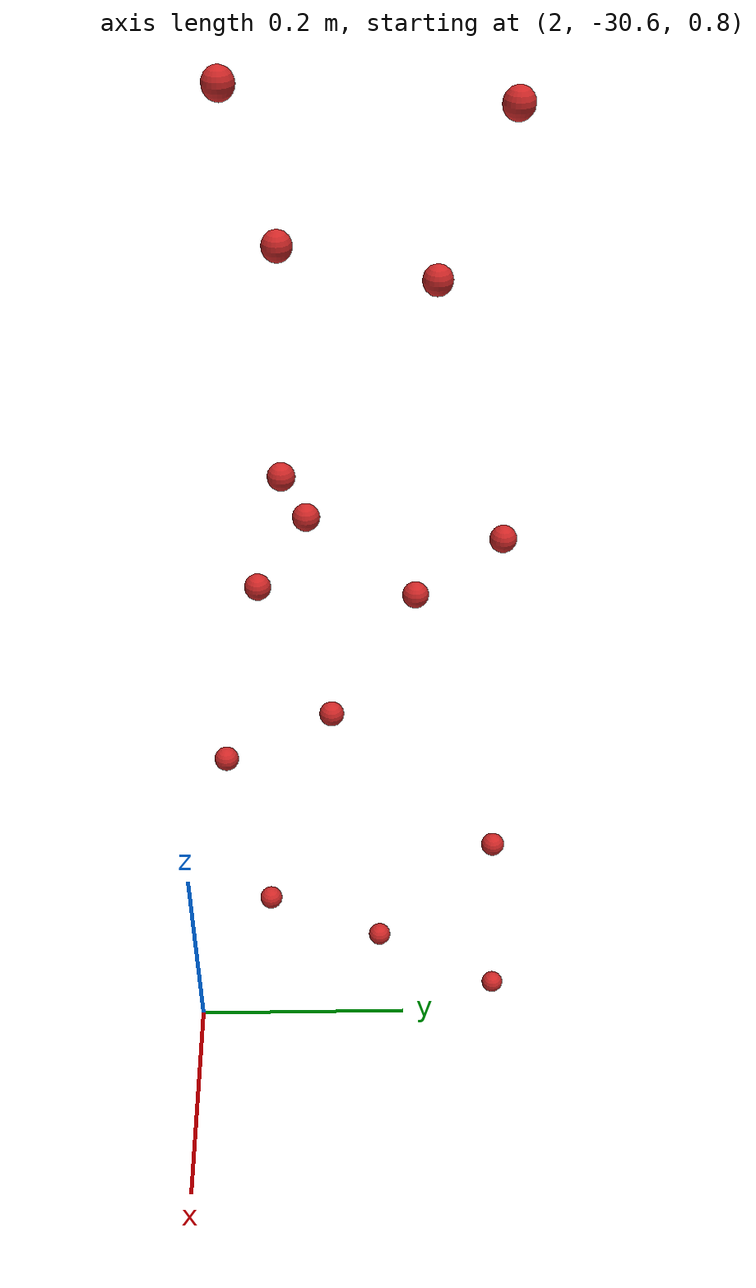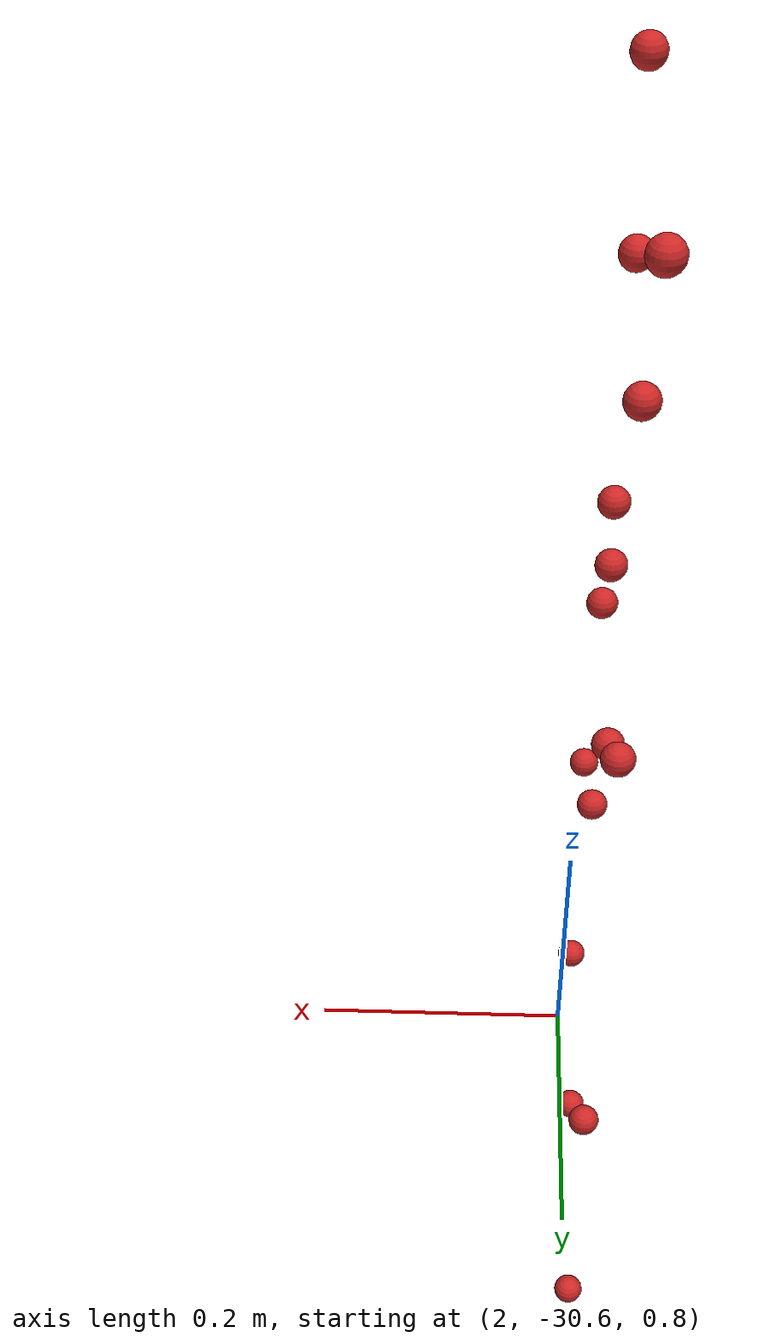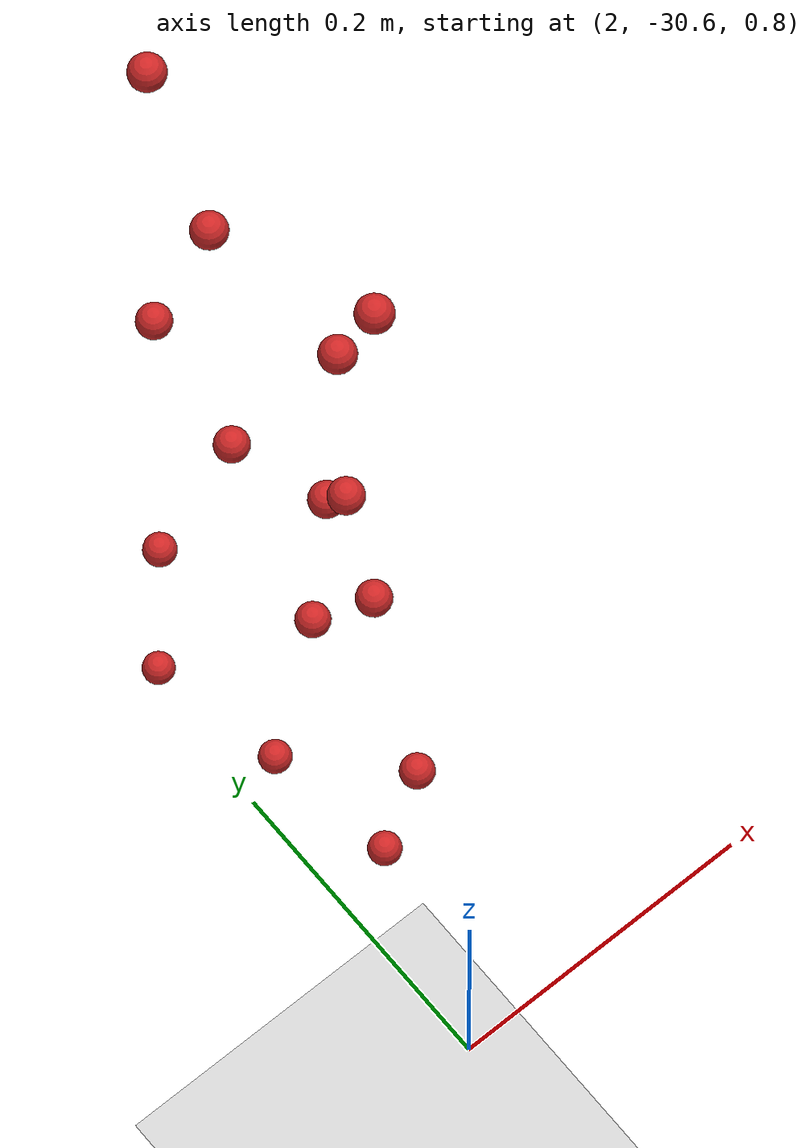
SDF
<sdf version="1.4">
 <world name="default">
  <model name="ground_plane">
   <static>1</static>
   <link name="link">
    <collision name="collision">
     <geometry><plane><normal>0 0 1</normal><size>100 100</size></plane></geometry>
     <surface><friction><ode><mu>100</mu><mu2>50</mu2></ode></friction></surface>
    </collision>
    <visual name="visual">
     <cast_shadows>0</cast_shadows>
     <geometry><plane><normal>0 0 1</normal><size>100 100</size></plane></geometry>
     <material>
      <script><uri>file://media/materials/scripts/gazebo.material</uri><name>Gazebo/Grey</name></script>
     </material>
    </visual>
    <velocity_decay><linear>0</linear><angular>0</angular></velocity_decay>
   </link>
  </model>
  <model name="apple430">
   <link name="my_apple">
    <inertial>
     <pose>2 0 0 0 -0 0</pose>
     <mass>1</mass>
     <inertia><ixx>1</ixx><ixy>0</ixy><ixz>0</ixz><iyy>1</iyy><iyz>0</iyz><izz>1</izz></inertia>
    </inertial>
    <collision name="my_apple_collision">
     <pose>2 0 1 0 -0 0</pose>
     <geometry><sphere><radius>0.01</radius></sphere></geometry>
    </collision>
    <visual name="my_apple_visual">
     <pose>2 0 1 0 -0 0</pose>
     <geometry><sphere><radius>0.01</radius></sphere></geometry>
     <material><script><name>Gazebo/Red</name><uri>__default__</uri></script></material>
    </visual>
    <gravity>0</gravity>
    <velocity_decay><linear>0</linear><angular>0</angular></velocity_decay>
   </link>
   <pose>0 -30.5254 -0.022488 0 -0 0</pose>
   <static>0</static>
  </model>
  <model name="apple431">
   <link name="my_apple">
    <inertial>
     <pose>2 0 0 0 -0 0</pose>
     <mass>1</mass>
     <inertia><ixx>1</ixx><ixy>0</ixy><ixz>0</ixz><iyy>1</iyy><iyz>0</iyz><izz>1</izz></inertia>
    </inertial>
    <collision name="my_apple_collision">
     <pose>2 0 1 0 -0 0</pose>
     <geometry><sphere><radius>0.01</radius></sphere></geometry>
    </collision>
    <visual name="my_apple_visual">
     <pose>2 0 1 0 -0 0</pose>
     <geometry><sphere><radius>0.01</radius></sphere></geometry>
     <material><script><name>Gazebo/Red</name><uri>__default__</uri></script></material>
    </visual>
    <gravity>0</gravity>
    <velocity_decay><linear>0</linear><angular>0</angular></velocity_decay>
   </link>
   <pose>0 -30.5011 0.429047 0 -0 0</pose>
   <static>0</static>
  </model>
  <model name="apple432">
   <link name="my_apple">
    <inertial>
     <pose>2 0 0 0 -0 0</pose>
     <mass>1</mass>
     <inertia><ixx>1</ixx><ixy>0</ixy><ixz>0</ixz><iyy>1</iyy><iyz>0</iyz><izz>1</izz></inertia>
    </inertial>
    <collision name="my_apple_collision">
     <pose>2 0 1 0 -0 0</pose>
     <geometry><sphere><radius>0.01</radius></sphere></geometry>
    </collision>
    <visual name="my_apple_visual">
     <pose>2 0 1 0 -0 0</pose>
     <geometry><sphere><radius>0.01</radius></sphere></geometry>
     <material><script><name>Gazebo/Red</name><uri>__default__</uri></script></material>
    </visual>
    <gravity>0</gravity>
    <velocity_decay><linear>0</linear><angular>0</angular></velocity_decay>
   </link>
   <pose>0 -30.4844 0.394965 0 -0 0</pose>
   <static>0</static>
  </model>
  <model name="apple433">
   <link name="my_apple">
    <inertial>
     <pose>2 0 0 0 -0 0</pose>
     <mass>1</mass>
     <inertia><ixx>1</ixx><ixy>0</ixy><ixz>0</ixz><iyy>1</iyy><iyz>0</iyz><izz>1</izz></inertia>
    </inertial>
    <collision name="my_apple_collision">
     <pose>2 0 1 0 -0 0</pose>
     <geometry><sphere><radius>0.01</radius></sphere></geometry>
    </collision>
    <visual name="my_apple_visual">
     <pose>2 0 1 0 -0 0</pose>
     <geometry><sphere><radius>0.01</radius></sphere></geometry>
     <material><script><name>Gazebo/Red</name><uri>__default__</uri></script></material>
    </visual>
    <gravity>0</gravity>
    <velocity_decay><linear>0</linear><angular>0</angular></velocity_decay>
   </link>
   <pose>0 -30.5218 0.333142 0 -0 0</pose>
   <static>0</static>
  </model>
  <model name="apple434">
   <link name="my_apple">
    <inertial>
     <pose>2 0 0 0 -0 0</pose>
     <mass>1</mass>
     <inertia><ixx>1</ixx><ixy>0</ixy><ixz>0</ixz><iyy>1</iyy><iyz>0</iyz><izz>1</izz></inertia>
    </inertial>
    <collision name="my_apple_collision">
     <pose>2 0 1 0 -0 0</pose>
     <geometry><sphere><radius>0.01</radius></sphere></geometry>
    </collision>
    <visual name="my_apple_visual">
     <pose>2 0 1 0 -0 0</pose>
     <geometry><sphere><radius>0.01</radius></sphere></geometry>
     <material><script><name>Gazebo/Red</name><uri>__default__</uri></script></material>
    </visual>
    <gravity>0</gravity>
    <velocity_decay><linear>0</linear><angular>0</angular></velocity_decay>
   </link>
   <pose>0 -30.4678 0.204739 0 -0 0</pose>
   <static>0</static>
  </model>
  <model name="apple435">
   <link name="my_apple">
    <inertial>
     <pose>2 0 0 0 -0 0</pose>
     <mass>1</mass>
     <inertia><ixx>1</ixx><ixy>0</ixy><ixz>0</ixz><iyy>1</iyy><iyz>0</iyz><izz>1</izz></inertia>
    </inertial>
    <collision name="my_apple_collision">
     <pose>2 0 1 0 -0 0</pose>
     <geometry><sphere><radius>0.01</radius></sphere></geometry>
    </collision>
    <visual name="my_apple_visual">
     <pose>2 0 1 0 -0 0</pose>
     <geometry><sphere><radius>0.01</radius></sphere></geometry>
     <material><script><name>Gazebo/Red</name><uri>__default__</uri></script></material>
    </visual>
    <gravity>0</gravity>
    <velocity_decay><linear>0</linear><angular>0</angular></velocity_decay>
   </link>
   <pose>0 -30.3973 0.572748 0 -0 0</pose>
   <static>0</static>
  </model>
  <model name="apple436">
   <link name="my_apple">
    <inertial>
     <pose>2 0 0 0 -0 0</pose>
     <mass>1</mass>
     <inertia><ixx>1</ixx><ixy>0</ixy><ixz>0</ixz><iyy>1</iyy><iyz>0</iyz><izz>1</izz></inertia>
    </inertial>
    <collision name="my_apple_collision">
     <pose>2 0 1 0 -0 0</pose>
     <geometry><sphere><radius>0.01</radius></sphere></geometry>
    </collision>
    <visual name="my_apple_visual">
     <pose>2 0 1 0 -0 0</pose>
     <geometry><sphere><radius>0.01</radius></sphere></geometry>
     <material><script><name>Gazebo/Red</name><uri>__default__</uri></script></material>
    </visual>
    <gravity>0</gravity>
    <velocity_decay><linear>0</linear><angular>0</angular></velocity_decay>
   </link>
   <pose>0 -30.4253 -0.077421 0 -0 0</pose>
   <static>0</static>
  </model>
  <model name="apple437">
   <link name="my_apple">
    <inertial>
     <pose>2 0 0 0 -0 0</pose>
     <mass>1</mass>
     <inertia><ixx>1</ixx><ixy>0</ixy><ixz>0</ixz><iyy>1</iyy><iyz>0</iyz><izz>1</izz></inertia>
    </inertial>
    <collision name="my_apple_collision">
     <pose>2 0 1 0 -0 0</pose>
     <geometry><sphere><radius>0.01</radius></sphere></geometry>
    </collision>
    <visual name="my_apple_visual">
     <pose>2 0 1 0 -0 0</pose>
     <geometry><sphere><radius>0.01</radius></sphere></geometry>
     <material><script><name>Gazebo/Red</name><uri>__default__</uri></script></material>
    </visual>
    <gravity>0</gravity>
    <velocity_decay><linear>0</linear><angular>0</angular></velocity_decay>
   </link>
   <pose>0 -30.4038 0.324624 0 -0 0</pose>
   <static>0</static>
  </model>
  <model name="apple438">
   <link name="my_apple">
    <inertial>
     <pose>2 0 0 0 -0 0</pose>
     <mass>1</mass>
     <inertia><ixx>1</ixx><ixy>0</ixy><ixz>0</ixz><iyy>1</iyy><iyz>0</iyz><izz>1</izz></inertia>
    </inertial>
    <collision name="my_apple_collision">
     <pose>2 0 1 0 -0 0</pose>
     <geometry><sphere><radius>0.01</radius></sphere></geometry>
    </collision>
    <visual name="my_apple_visual">
     <pose>2 0 1 0 -0 0</pose>
     <geometry><sphere><radius>0.01</radius></sphere></geometry>
     <material><script><name>Gazebo/Red</name><uri>__default__</uri></script></material>
    </visual>
    <gravity>0</gravity>
    <velocity_decay><linear>0</linear><angular>0</angular></velocity_decay>
   </link>
   <pose>0 -30.3416 0.374781 0 -0 0</pose>
   <static>0</static>
  </model>
  <model name="apple440">
   <link name="my_apple">
    <inertial>
     <pose>2 0 0 0 -0 0</pose>
     <mass>1</mass>
     <inertia><ixx>1</ixx><ixy>0</ixy><ixz>0</ixz><iyy>1</iyy><iyz>0</iyz><izz>1</izz></inertia>
    </inertial>
    <collision name="my_apple_collision">
     <pose>2 0 1 0 -0 0</pose>
     <geometry><sphere><radius>0.01</radius></sphere></geometry>
    </collision>
    <visual name="my_apple_visual">
     <pose>2 0 1 0 -0 0</pose>
     <geometry><sphere><radius>0.01</radius></sphere></geometry>
     <material><script><name>Gazebo/Red</name><uri>__default__</uri></script></material>
    </visual>
    <gravity>0</gravity>
    <velocity_decay><linear>0</linear><angular>0</angular></velocity_decay>
   </link>
   <pose>0 -30.3268 0.046457 0 -0 0</pose>
   <static>0</static>
  </model>
  <model name="apple441">
   <link name="my_apple">
    <inertial>
     <pose>2 0 0 0 -0 0</pose>
     <mass>1</mass>
     <inertia><ixx>1</ixx><ixy>0</ixy><ixz>0</ixz><iyy>1</iyy><iyz>0</iyz><izz>1</izz></inertia>
    </inertial>
    <collision name="my_apple_collision">
     <pose>2 0 1 0 -0 0</pose>
     <geometry><sphere><radius>0.01</radius></sphere></geometry>
    </collision>
    <visual name="my_apple_visual">
     <pose>2 0 1 0 -0 0</pose>
     <geometry><sphere><radius>0.01</radius></sphere></geometry>
     <material><script><name>Gazebo/Red</name><uri>__default__</uri></script></material>
    </visual>
    <gravity>0</gravity>
    <velocity_decay><linear>0</linear><angular>0</angular></velocity_decay>
   </link>
   <pose>0 -30.3548 0.679958 0 -0 0</pose>
   <static>0</static>
  </model>
  <model name="apple448">
   <link name="my_apple">
    <inertial>
     <pose>2 0 0 0 -0 0</pose>
     <mass>1</mass>
     <inertia><ixx>1</ixx><ixy>0</ixy><ixz>0</ixz><iyy>1</iyy><iyz>0</iyz><izz>1</izz></inertia>
    </inertial>
    <collision name="my_apple_collision">
     <pose>2 0 1 0 -0 0</pose>
     <geometry><sphere><radius>0.01</radius></sphere></geometry>
    </collision>
    <visual name="my_apple_visual">
     <pose>2 0 1 0 -0 0</pose>
     <geometry><sphere><radius>0.01</radius></sphere></geometry>
     <material><script><name>Gazebo/Red</name><uri>__default__</uri></script></material>
    </visual>
    <gravity>0</gravity>
    <velocity_decay><linear>0</linear><angular>0</angular></velocity_decay>
   </link>
   <pose>0 -30.4982 0.595532 0 -0 0</pose>
   <static>0</static>
  </model>
  <model name="apple449">
   <link name="my_apple">
    <inertial>
     <pose>2 0 0 0 -0 0</pose>
     <mass>1</mass>
     <inertia><ixx>1</ixx><ixy>0</ixy><ixz>0</ixz><iyy>1</iyy><iyz>0</iyz><izz>1</izz></inertia>
    </inertial>
    <collision name="my_apple_collision">
     <pose>2 0 1 0 -0 0</pose>
     <geometry><sphere><radius>0.01</radius></sphere></geometry>
    </collision>
    <visual name="my_apple_visual">
     <pose>2 0 1 0 -0 0</pose>
     <geometry><sphere><radius>0.01</radius></sphere></geometry>
     <material><script><name>Gazebo/Red</name><uri>__default__</uri></script></material>
    </visual>
    <gravity>0</gravity>
    <velocity_decay><linear>0</linear><angular>0</angular></velocity_decay>
   </link>
   <pose>0 -30.5282 0.691786 0 -0 0</pose>
   <static>0</static>
  </model>
  <model name="apple455">
   <link name="my_apple">
    <inertial>
     <pose>2 0 0 0 -0 0</pose>
     <mass>1</mass>
     <inertia><ixx>1</ixx><ixy>0</ixy><ixz>0</ixz><iyy>1</iyy><iyz>0</iyz><izz>1</izz></inertia>
    </inertial>
    <collision name="my_apple_collision">
     <pose>2 0 1 0 -0 0</pose>
     <geometry><sphere><radius>0.01</radius></sphere></geometry>
    </collision>
    <visual name="my_apple_visual">
     <pose>2 0 1 0 -0 0</pose>
     <geometry><sphere><radius>0.01</radius></sphere></geometry>
     <material><script><name>Gazebo/Red</name><uri>__default__</uri></script></material>
    </visual>
    <gravity>0</gravity>
    <velocity_decay><linear>0</linear><angular>0</angular></velocity_decay>
   </link>
   <pose>0 -30.3137 -0.153473 0 -0 0</pose>
   <static>0</static>
  </model>
  <model name="apple466">
   <link name="my_apple">
    <inertial>
     <pose>2 0 0 0 -0 0</pose>
     <mass>1</mass>
     <inertia><ixx>1</ixx><ixy>0</ixy><ixz>0</ixz><iyy>1</iyy><iyz>0</iyz><izz>1</izz></inertia>
    </inertial>
    <collision name="my_apple_collision">
     <pose>2 0 1 0 -0 0</pose>
     <geometry><sphere><radius>0.01</radius></sphere></geometry>
    </collision>
    <visual name="my_apple_visual">
     <pose>2 0 1 0 -0 0</pose>
     <geometry><sphere><radius>0.01</radius></sphere></geometry>
     <material><script><name>Gazebo/Red</name><uri>__default__</uri></script></material>
    </visual>
    <gravity>0</gravity>
    <velocity_decay><linear>0</linear><angular>0</angular></velocity_decay>
   </link>
   <pose>0 -30.5556 0.155351 0 -0 0</pose>
   <static>0</static>
  </model>
 </world>
</sdf>
